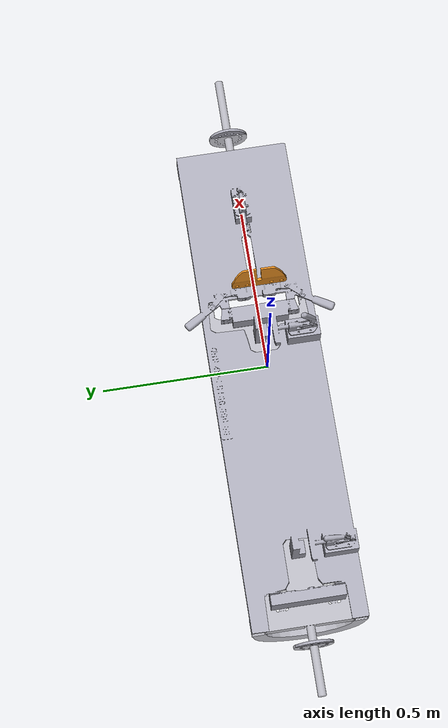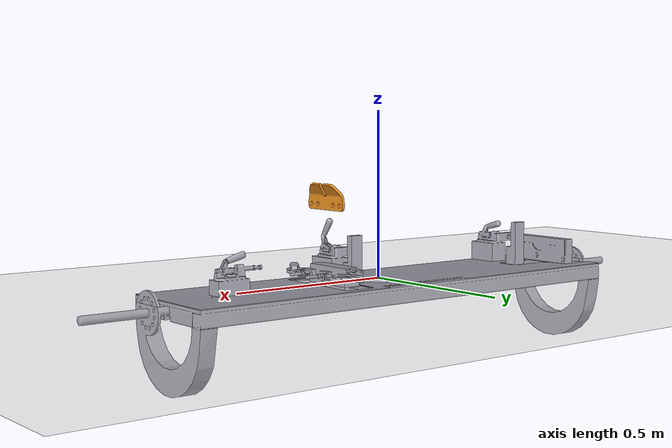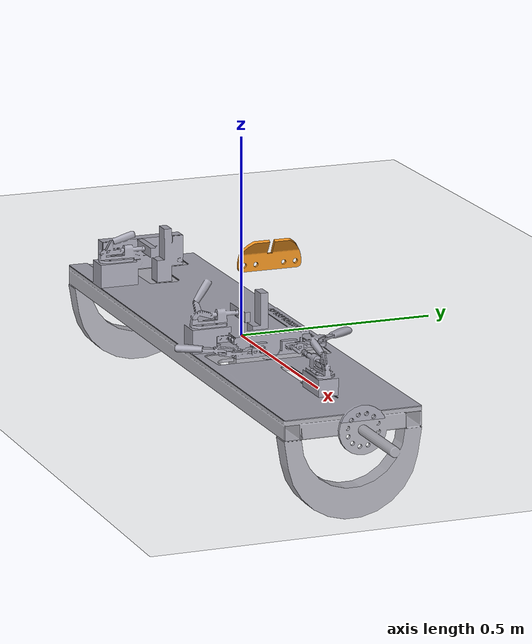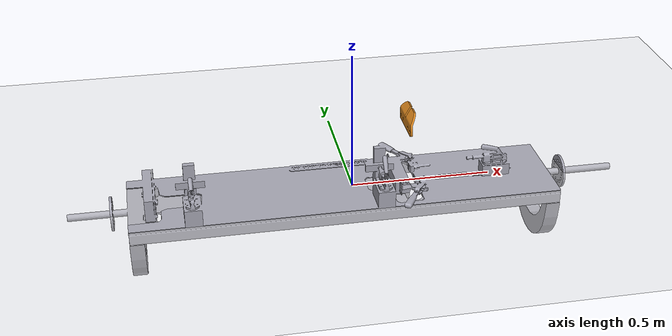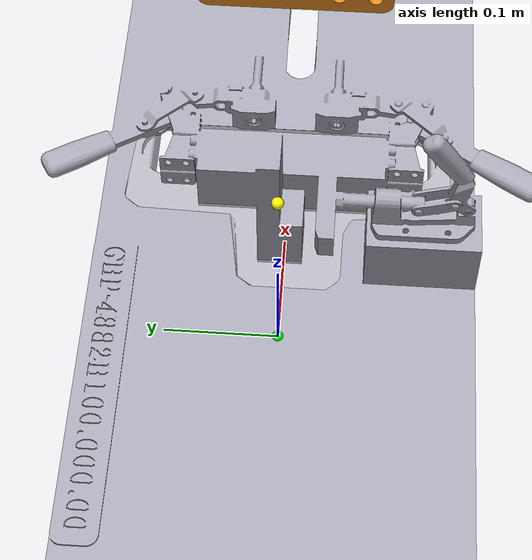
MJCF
<mujoco model="chandelier_cad_assembly">
  <compiler angle="radian" autolimits="true" meshdir="cad"/>

  <option timestep="0.001" integrator="implicitfast" cone="elliptic"
          sdf_iterations="10" sdf_initpoints="20"/>

  <default>
    <joint damping="2" armature="0.02"/>
    <geom friction="0.9 0.01 0.001" condim="4"
          solref="0.004 1" solimp="0.90 0.95 0.001"/>
    <position kp="700" kv="45"/>
  </default>

  <!-- sdflib turns each original STL into a non-convex collision SDF. -->
  <extension>
    <plugin plugin="mujoco.sdf.sdflib">
      <instance name="table_sdf"><config key="aabb" value="0"/></instance>
      <instance name="part_sdf"><config key="aabb" value="0"/></instance>
    </plugin>
  </extension>

  <asset>
    <mesh name="assembly_table_visual_mesh" file="chandelier_assembly_table_visual.stl"/>
    <mesh name="assembly_table_collision_mesh" file="chandelier_assembly_table_collision.stl"/>
    <mesh name="part_1_mesh" file="chandelier_part_1.stl"/>
  </asset>

  <worldbody>
    <light pos="0 -1 1.5" dir="0 1 -1"/>
    <camera name="overview" pos="0.75 -1.10 0.65"
            xyaxes="0.83 0.56 0 -0.22 0.34 0.91"/>
    <geom name="floor" type="plane" size="0 0 0.05" rgba="0.85 0.85 0.85 1"/>

    <!-- Both CAD files share this assembly coordinate frame. -->
    <body name="fixture" pos="0 0 0">
      <geom name="assembly_table_visual" type="mesh" mesh="assembly_table_visual_mesh"
            contype="0" conaffinity="0" rgba="0.65 0.65 0.70 1"/>
      <geom name="assembly_table_collision" type="sdf" mesh="assembly_table_collision_mesh"
            rgba="0.65 0.65 0.70 0">
        <plugin instance="table_sdf"/>
      </geom>
      <site name="assembly_frame" pos="0 0 0" size="0.005" rgba="0 1 0 1"/>
    </body>

    <!-- Six-DOF Cartesian fixture; the part stays grasped for this task. -->
    <body name="x_stage" pos="0 0 0.20">
      <inertial pos="0 0 0" mass="1.0" diaginertia="0.001 0.001 0.001"/>
      <joint name="joint_x" type="slide" axis="1 0 0" range="-0.15 0.15"/>
      <body name="y_stage">
        <inertial pos="0 0 0" mass="0.8" diaginertia="0.0008 0.0008 0.0008"/>
        <joint name="joint_y" type="slide" axis="0 1 0" range="-0.15 0.15"/>
        <body name="z_stage">
          <inertial pos="0 0 0" mass="0.6" diaginertia="0.0006 0.0006 0.0006"/>
          <joint name="joint_z" type="slide" axis="0 0 1" range="-0.24 0.05"/>
          <body name="roll_stage">
            <inertial pos="0 0 0" mass="0.4" diaginertia="0.0004 0.0004 0.0004"/>
            <joint name="joint_roll" type="hinge" axis="1 0 0" range="-0.70 0.70"/>
            <body name="pitch_stage">
              <inertial pos="0 0 0" mass="0.3" diaginertia="0.0003 0.0003 0.0003"/>
              <joint name="joint_pitch" type="hinge" axis="0 1 0" range="-0.70 0.70"/>
              <body name="yaw_stage">
                <inertial pos="0 0 0" mass="0.2" diaginertia="0.0002 0.0002 0.0002"/>
                <joint name="joint_yaw" type="hinge" axis="0 0 1" range="-0.70 0.70"/>
                <body name="ft_dummy">
                  <site name="wrist_ft_site" pos="0 0 0" size="0.004" rgba="1 0 0 1"/>
                  <site name="ee_site" pos="0 0 0" size="0.003" rgba="0 0 1 1"/>
                  <geom name="part_1_visual" type="mesh" mesh="part_1_mesh"
                        contype="0" conaffinity="0" rgba="0.90 0.55 0.12 1"/>
                  <geom name="part_1_collision" type="sdf" mesh="part_1_mesh"
                        mass="0.20" rgba="0.90 0.55 0.12 0">
                    <plugin instance="part_sdf"/>
                  </geom>
                  <site name="part_frame" pos="0 0 0" size="0.005" rgba="1 1 0 1"/>
                </body>
              </body>
            </body>
          </body>
        </body>
      </body>
    </body>
  </worldbody>

  <actuator>
    <position name="act_x" joint="joint_x" ctrlrange="-0.15 0.15" forcerange="-250 250"/>
    <position name="act_y" joint="joint_y" ctrlrange="-0.15 0.15" forcerange="-250 250"/>
    <position name="act_z" joint="joint_z" ctrlrange="-0.24 0.05" forcerange="-300 300"/>
    <position name="act_roll" joint="joint_roll" ctrlrange="-0.70 0.70" forcerange="-30 30"/>
    <position name="act_pitch" joint="joint_pitch" ctrlrange="-0.70 0.70" forcerange="-30 30"/>
    <position name="act_yaw" joint="joint_yaw" ctrlrange="-0.70 0.70" forcerange="-30 30"/>
  </actuator>

  <sensor>
    <force name="wrist_force" site="wrist_ft_site"/>
    <torque name="wrist_torque" site="wrist_ft_site"/>
    <framepos name="ee_pos" objtype="site" objname="ee_site"/>
    <framequat name="ee_quat" objtype="site" objname="ee_site"/>
    <framepos name="part_rel_pos" objtype="site" objname="part_frame"
              reftype="site" refname="assembly_frame"/>
    <framequat name="part_rel_quat" objtype="site" objname="part_frame"
               reftype="site" refname="assembly_frame"/>
  </sensor>
</mujoco>
